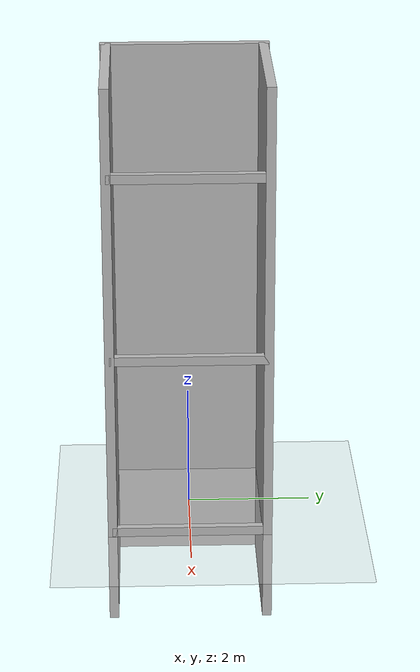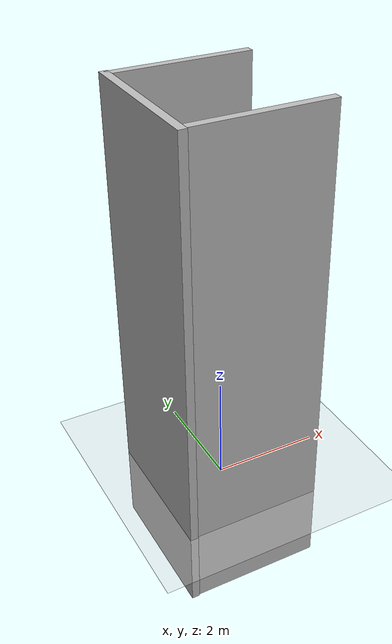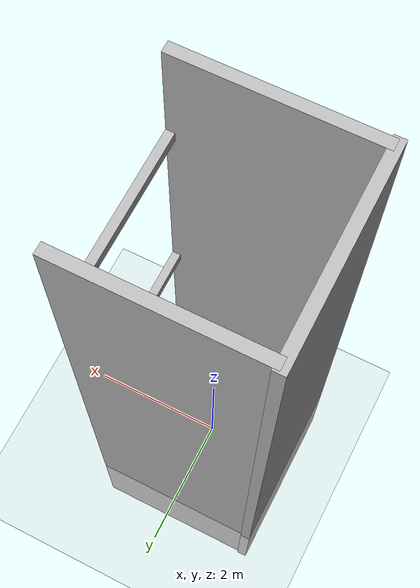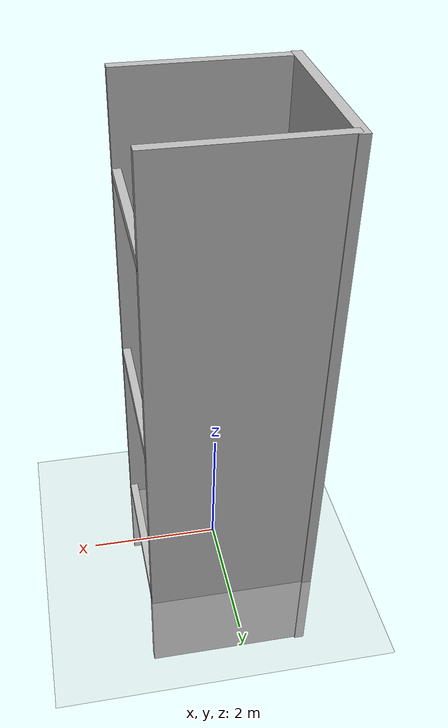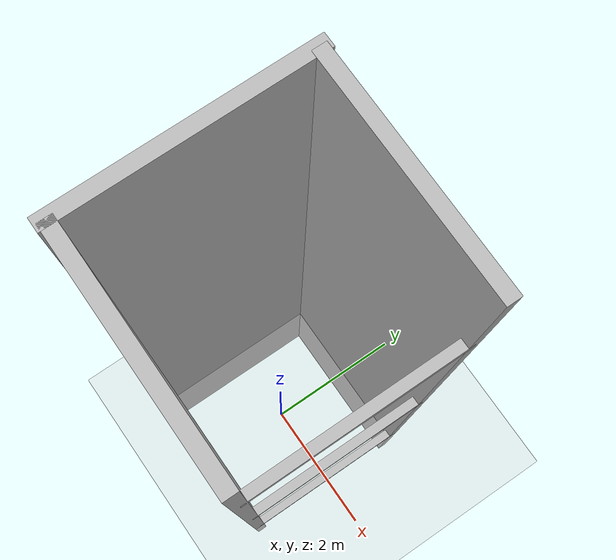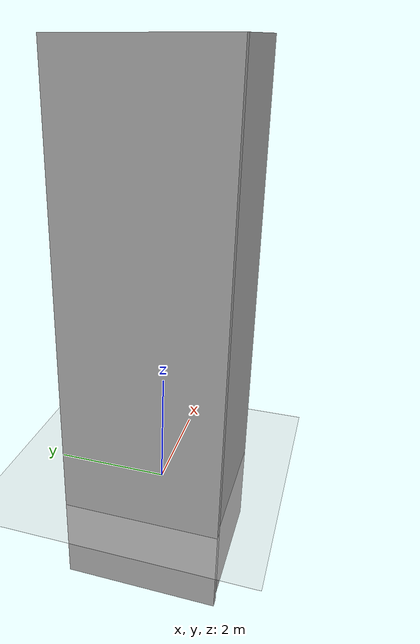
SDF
<sdf version="1.6">
 <world name="default">
  <model name="ground_plane">
   <static>1</static>
   <link name="link">
    <collision name="collision">
     <geometry><plane><normal>0 0 1</normal><size>1000 1000</size></plane></geometry>
     <surface><friction><ode><mu>100</mu><mu2>50</mu2></ode></friction></surface>
    </collision>
    <visual name="visual">
     <cast_shadows>0</cast_shadows>
     <geometry><plane><normal>0 0 1</normal><size>1000 1000</size></plane></geometry>
     <material>
      <script><uri>file://media/materials/scripts/gazebo.material</uri><name>Gazebo/Grey</name></script>
     </material>
    </visual>
   </link>
  </model>
  <model name="elevator_shaft">
   <static>1</static>
   <link name="link">
    <collision name="shaft_wall1_collision">
     <pose>0 1.25 3 0 -0 0</pose>
     <geometry><box><size>2.5 0.15 9</size></box></geometry>
    </collision>
    <visual name="shaft_wall1_visual">
     <pose>0 1.25 3 0 -0 0</pose>
     <geometry><box><size>2.5 0.15 9</size></box></geometry>
    </visual>
    <collision name="shaft_wall2_collision">
     <pose>0 -1.25 3 0 -0 0</pose>
     <geometry><box><size>2.5 0.15 9</size></box></geometry>
    </collision>
    <visual name="shaft_wall2_visual">
     <pose>0 -1.25 3 0 -0 0</pose>
     <geometry><box><size>2.5 0.15 9</size></box></geometry>
    </visual>
    <collision name="shaft_wall3_collision">
     <pose>-1.25 0 3 0 -0 0</pose>
     <geometry><box><size>0.15 2.7 9</size></box></geometry>
    </collision>
    <visual name="shaft_wall3_visual">
     <pose>-1.25 0 3 0 -0 0</pose>
     <geometry><box><size>0.15 2.7 9</size></box></geometry>
    </visual>
    <collision name="floor0_collision">
     <pose>1.19 0 0.075 0 -0 0</pose>
     <geometry><box><size>0.12 2.5 0.15</size></box></geometry>
    </collision>
    <visual name="floor0_visual">
     <pose>1.19 0 0.075 0 -0 0</pose>
     <geometry><box><size>0.12 2.5 0.15</size></box></geometry>
    </visual>
    <collision name="floor1_collision">
     <pose>1.19 0 3.075 0 -0 0</pose>
     <geometry><box><size>0.12 2.5 0.15</size></box></geometry>
    </collision>
    <visual name="floor1_visual">
     <pose>1.19 0 3.075 0 -0 0</pose>
     <geometry><box><size>0.12 2.5 0.15</size></box></geometry>
    </visual>
    <collision name="floor2_collision">
     <pose>1.19 0 6.075 0 -0 0</pose>
     <geometry><box><size>0.12 2.5 0.15</size></box></geometry>
    </collision>
    <visual name="floor2_visual">
     <pose>1.19 0 6.075 0 -0 0</pose>
     <geometry><box><size>0.12 2.5 0.15</size></box></geometry>
    </visual>
   </link>
  </model>
 </world>
</sdf>
